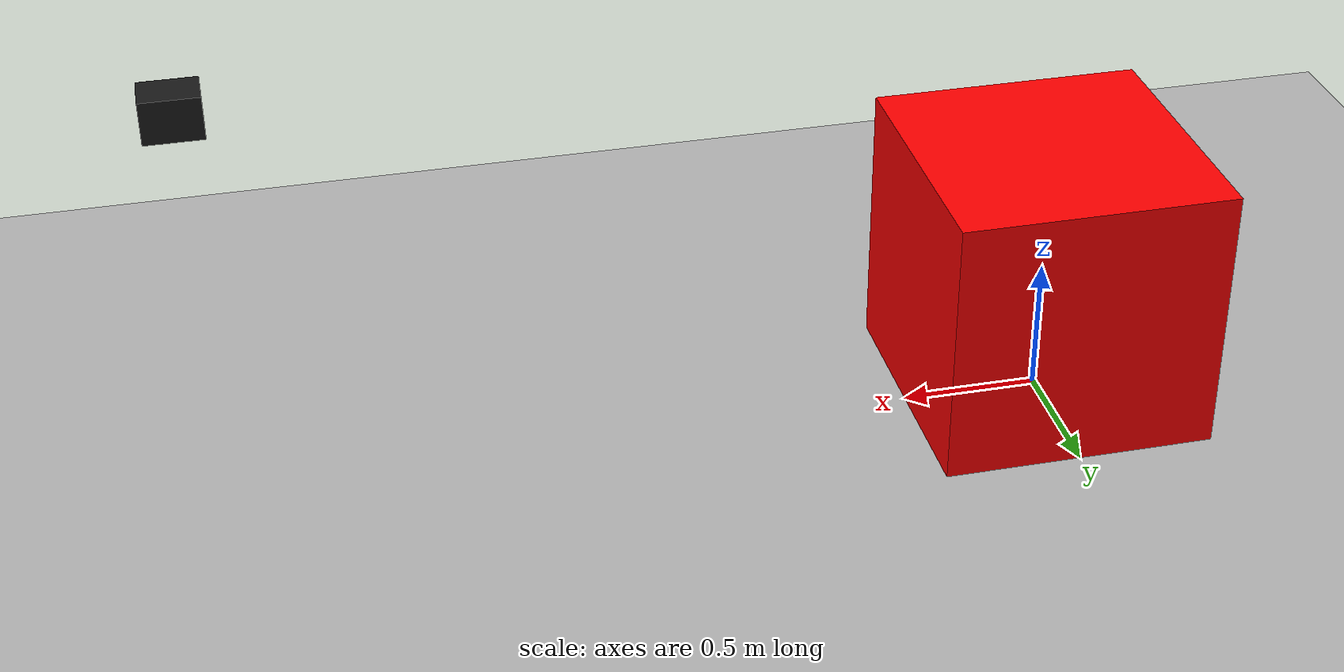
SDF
<?xml version="1.0" ?>
<sdf version="1.9">

  <world name="camera_test_world">

    <!-- Gazebo 물리 엔진을 실행합니다. -->
    <plugin
      filename="gz-sim-physics-system"
      name="gz::sim::systems::Physics">
    </plugin>

    <!-- Gazebo GUI와 월드 장면 정보를 공유합니다. -->
    <plugin
      filename="gz-sim-scene-broadcaster-system"
      name="gz::sim::systems::SceneBroadcaster">
    </plugin>

    <!-- 카메라, 라이다 등 Gazebo 센서를 작동시킵니다. -->
    <plugin
      filename="gz-sim-sensors-system"
      name="gz::sim::systems::Sensors">

      <!-- 카메라 렌더링 엔진으로 Ogre2를 사용합니다. -->
      <render_engine>ogre2</render_engine>
    </plugin>

    <!-- 월드 조명 -->
    <light type="directional" name="sun">
      <cast_shadows>true</cast_shadows>

      <pose>0 0 10 0 0 0</pose>

      <diffuse>0.8 0.8 0.8 1</diffuse>
      <specular>0.2 0.2 0.2 1</specular>

      <attenuation>
        <range>1000</range>
        <constant>0.9</constant>
        <linear>0.01</linear>
        <quadratic>0.001</quadratic>
      </attenuation>

      <direction>-0.5 0.1 -0.9</direction>
    </light>

    <!-- 바닥 -->
    <model name="ground_plane">
      <static>true</static>

      <link name="ground_link">
        <collision name="ground_collision">
          <geometry>
            <plane>
              <normal>0 0 1</normal>
              <size>20 20</size>
            </plane>
          </geometry>
        </collision>

        <visual name="ground_visual">
          <geometry>
            <plane>
              <normal>0 0 1</normal>
              <size>20 20</size>
            </plane>
          </geometry>

          <material>
            <ambient>0.7 0.7 0.7 1</ambient>
            <diffuse>0.7 0.7 0.7 1</diffuse>
          </material>
        </visual>
      </link>
    </model>

    <!-- 카메라 영상에서 확인할 테스트 상자 -->
    <model name="red_box">
      <static>true</static>

      <!-- 월드 원점에 높이 0.5m로 배치 -->
      <pose>0 0 0.5 0 0 0</pose>

      <link name="box_link">
        <collision name="box_collision">
          <geometry>
            <box>
              <size>1 1 1</size>
            </box>
          </geometry>
        </collision>

        <visual name="box_visual">
          <geometry>
            <box>
              <size>1 1 1</size>
            </box>
          </geometry>

          <material>
            <ambient>1 0 0 1</ambient>
            <diffuse>1 0 0 1</diffuse>
          </material>
        </visual>
      </link>
    </model>

    <!-- 월드에 고정된 가상 카메라 -->
    <model name="fixed_camera">
      <static>true</static>

      <!--
        카메라 위치:
          x = 3m
          y = 0m
          z = 1.5m

        yaw = 3.14159로 회전시켜
        월드 원점 방향을 바라보게 합니다.
      -->
      <pose>3 0 1.5 0 0 3.14159</pose>

      <link name="camera_link">

        <!-- 카메라 위치를 확인하기 위한 작은 상자 -->
        <visual name="camera_body">
          <geometry>
            <box>
              <size>0.2 0.15 0.15</size>
            </box>
          </geometry>

          <material>
            <ambient>0.1 0.1 0.1 1</ambient>
            <diffuse>0.1 0.1 0.1 1</diffuse>
          </material>
        </visual>

        <!-- RGB 카메라 센서 -->
        <sensor name="rgb_camera" type="camera">

          <!-- 시뮬레이션 중 항상 센서를 작동합니다. -->
          <always_on>true</always_on>

          <!-- 초당 30장의 영상을 생성합니다. -->
          <update_rate>30</update_rate>

          <!-- Gazebo Transport에서 사용할 토픽 이름입니다. -->
          <topic>/gazebo/camera/image</topic>

          <!-- Gazebo GUI에서 카메라 시야를 표시합니다. -->
          <visualize>true</visualize>

          <camera>

            <!-- 약 60도의 수평 화각 -->
            <horizontal_fov>1.047</horizontal_fov>

            <!-- 출력 영상 설정 -->
            <image>
              <width>640</width>
              <height>480</height>
              <format>R8G8B8</format>
            </image>

            <!-- 카메라가 볼 수 있는 최소·최대 거리 -->
            <clip>
              <near>0.1</near>
              <far>100</far>
            </clip>

          </camera>
        </sensor>

      </link>
    </model>

  </world>

</sdf>
